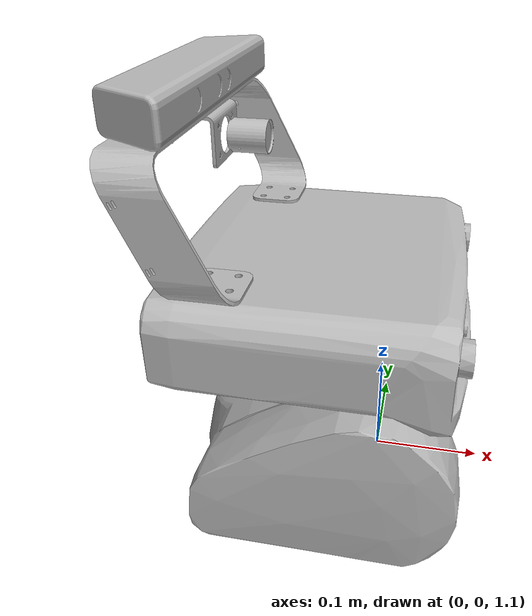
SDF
<?xml version="1.0" ?>
<sdf version="1.5">
  <model name="pr2">
    <static>0</static>
    <link name="head_pan_link">
      <self_collide>0</self_collide>
      <pose>-0.067070 0.000000 1.172130 0.000000 -0.000000 0.000000</pose>
      <inertial>
        <mass>6.339000</mass>
        <pose>0.010907 0.031693 0.090507 0.000000 -0.000000 0.000000</pose>
        <inertia>
          <ixx>0.032498</ixx>
          <ixy>0.000636</ixy>
          <ixz>0.002585</ixz>
          <iyy>0.046546</iyy>
          <iyz>-0.002453</iyz>
          <izz>0.057653</izz>
        </inertia>
      </inertial>
      <collision name="head_pan_link_geom">
        <geometry>
          <mesh>
            <uri>model://pr2/meshes/head_v0/head_pan_L.stl</uri>
          </mesh>
        </geometry>
      </collision>
      <visual name="head_pan_link_geom_visual">
        <geometry>
          <mesh>
            <uri>model://pr2/meshes/head_v0/head_pan.dae</uri>
          </mesh>
        </geometry>
      </visual>
      <velocity_decay />
    </link>
    <link name="head_tilt_link">
      <projector name="projector_wg6802418_projector_wg6802418">
        <texture>stereo_projection_pattern_high_res_red.png</texture>
        <fov>0.959931</fov>
        <near_clip>0.100000</near_clip>
        <far_clip>10.000000</far_clip>
        <pose>0.023200 0.110000 0.119100 0 -1.570793 0</pose>
      </projector>
      <self_collide>0</self_collide>
      <pose>0.000930 0.000000 1.172130 0.000000 -0.000000 0.000000</pose>
      <inertial>
        <mass>5.319000</mass>
        <pose>-0.005151 -0.014635 0.072819 0.000000 -0.000000 0.000000</pose>
        <inertia>
          <ixx>0.126134</ixx>
          <ixy>0.000237</ixy>
          <ixz>0.011881</ixz>
          <iyy>0.165102</iyy>
          <iyz>0.001606</iyz>
          <izz>0.166947</izz>
        </inertia>
      </inertial>
      <collision name="head_tilt_link_geom">
        <geometry>
          <mesh>
            <uri>model://pr2/meshes/head_v0/head_tilt_L.stl</uri>
          </mesh>
        </geometry>
      </collision>
      <visual name="head_tilt_link_geom_visual">
        <geometry>
          <mesh>
            <uri>model://pr2/meshes/head_v0/head_tilt.dae</uri>
          </mesh>
        </geometry>
      </visual>
      <collision name="head_tilt_link_geom_head_mount_kinect_ir_link">
        <pose>-0.147067 0.012500 0.291953 0.000000 -0.000000 0.000000</pose>
        <geometry>
          <sphere>
            <radius>0.000500</radius>
          </sphere>
        </geometry>
      </collision>
      <visual name="head_tilt_link_geom_head_mount_kinect_ir_link_visual">
        <pose>-0.147067 0.012500 0.291953 0.000000 -0.000000 0.000000</pose>
        <geometry>
          <sphere>
            <radius>0.000250</radius>
          </sphere>
        </geometry>
        <material>
          <script><name>Gazebo/Red</name></script>
        </material>
      </visual>
      <collision name="head_tilt_link_geom_head_mount_kinect_rgb_link">
        <pose>-0.147067 0.017500 0.291953 0.000000 -0.000000 0.000000</pose>
        <geometry>
          <sphere>
            <radius>0.000500</radius>
          </sphere>
        </geometry>
      </collision>
      <visual name="head_tilt_link_geom_head_mount_kinect_rgb_link_visual">
        <pose>-0.147067 0.017500 0.291953 0.000000 -0.000000 0.000000</pose>
        <geometry>
          <sphere>
            <radius>0.000250</radius>
          </sphere>
        </geometry>
        <material>
          <script><name>Gazebo/Red</name></script>
        </material>
      </visual>
      <collision name="head_tilt_link_geom_head_mount_link">
        <pose>-0.114800 0.000000 0.155500 0.000000 -0.000000 0.000000</pose>
        <geometry>
          <sphere>
            <radius>0.000500</radius>
          </sphere>
        </geometry>
      </collision>
      <visual name="head_tilt_link_geom_head_mount_link_visual">
        <pose>-0.114800 0.000000 0.155500 0.000000 -0.000000 0.000000</pose>
        <geometry>
          <mesh>
            <uri>model://pr2/meshes/sensors/kinect_prosilica_v0/115x100_swept_back--coarse.STL</uri>
            <scale>0.001000 0.001000 0.001000</scale>
          </mesh>
        </geometry>
      </visual>
      <collision name="head_tilt_link_geom_head_mount_prosilica_link">
        <pose>-0.161257 0.012500 0.244421 0.000000 -0.000000 0.000000</pose>
        <geometry>
          <sphere>
            <radius>0.000500</radius>
          </sphere>
        </geometry>
      </collision>
      <visual name="head_tilt_link_geom_head_mount_prosilica_link_visual">
        <pose>-0.161257 0.012500 0.244421 0.000000 -0.000000 0.000000</pose>
        <geometry>
          <sphere>
            <radius>0.000250</radius>
          </sphere>
        </geometry>
        <material>
          <script><name>Gazebo/Red</name></script>
        </material>
      </visual>
      <collision name="head_tilt_link_geom_head_plate_frame">
        <pose>0.023200 0.000000 0.064500 0.000000 -0.000000 0.000000</pose>
        <geometry>
          <box>
            <size>0.010000 0.010000 0.010000</size>
          </box>
        </geometry>
      </collision>
      <visual name="head_tilt_link_geom_head_plate_frame_visual">
        <pose>0.023200 0.000000 0.064500 0.000000 -0.000000 0.000000</pose>
        <geometry>
          <box>
            <size>0.010000 0.010000 0.010000</size>
          </box>
        </geometry>
        <material>
          <script><name>Gazebo/Grey</name></script>
        </material>
      </visual>
      <sensor name="head_mount_sensor" type="camera">
        <always_on>0</always_on>
        <visualize>0</visualize>
        <update_rate>1.000000</update_rate>
        <pose>-0.147067 0.012500 0.291953 0.000000 -0.000000 0.000000</pose>
        <camera>
          <horizontal_fov>0.994838</horizontal_fov>
          <image>
            <width>640</width>
            <height>480</height>
            <format>L8</format>
          </image>
          <clip>
            <near>0.010000</near>
            <far>5.000000</far>
          </clip>
        </camera>
      </sensor>
      <sensor name="head_mount_prosilica_link_sensor" type="camera">
        <update_rate>1.000000</update_rate>
        <pose>-0.161257 0.012500 0.244421 0.000000 -0.000000 0.000000</pose>
        <camera>
          <horizontal_fov>1.120501</horizontal_fov>
          <image>
            <width>320</width>
            <height>240</height>
            <format>R8G8B8</format>
          </image>
          <clip>
            <near>0.100000</near>
            <far>100.000000</far>
          </clip>
        </camera>
      </sensor>
      <sensor name="head_mount_prosilica_link_sim_pcd_sensor" type="camera">
        <update_rate>1.000000</update_rate>
        <pose>-0.161257 0.012500 0.244421 0.000000 -0.000000 0.000000</pose>
        <camera>
          <horizontal_fov>1.120501</horizontal_fov>
          <image>
            <width>320</width>
            <height>240</height>
            <format>R8G8B8</format>
          </image>
          <clip>
            <near>0.100000</near>
            <far>100.000000</far>
          </clip>
        </camera>
      </sensor>
      <sensor name="narrow_stereo_gazebo_l_stereo_camera_sensor" type="camera">
        <always_on>1</always_on>
        <visualize>1</visualize>
        <update_rate>25.000000</update_rate>
        <pose>0.068200 0.060000 0.114600 0.000000 -0.000000 0.000000</pose>
        <camera>
          <horizontal_fov>0.785398</horizontal_fov>
          <image>
            <width>640</width>
            <height>480</height>
            <format>L8</format>
          </image>
          <clip>
            <near>0.100000</near>
            <far>100.000000</far>
          </clip>
        </camera>
      </sensor>
      <sensor name="narrow_stereo_gazebo_r_stereo_camera_sensor" type="camera">
        <always_on>1</always_on>
        <update_rate>25.000000</update_rate>
        <pose>0.068200 -0.030000 0.114600 0.000000 -0.000000 0.000000</pose>
        <camera>
          <horizontal_fov>0.785398</horizontal_fov>
          <image>
            <width>640</width>
            <height>480</height>
            <format>L8</format>
          </image>
          <clip>
            <near>0.100000</near>
            <far>100.000000</far>
          </clip>
        </camera>
      </sensor>
      <sensor name="wide_stereo_gazebo_l_stereo_camera_sensor" type="camera">
        <update_rate>25.000000</update_rate>
        <pose>0.068200 0.030000 0.114600 0.000000 -0.000000 0.000000</pose>
        <camera>
          <horizontal_fov>1.570796</horizontal_fov>
          <image>
            <width>640</width>
            <height>480</height>
            <format>BAYER_BGGR8</format>
          </image>
          <clip>
            <near>0.100000</near>
            <far>100.000000</far>
          </clip>
        </camera>
      </sensor>
      <sensor name="wide_stereo_gazebo_r_stereo_camera_sensor" type="camera">
        <update_rate>25.000000</update_rate>
        <pose>0.068200 -0.060000 0.114600 0.000000 -0.000000 0.000000</pose>
        <camera>
          <horizontal_fov>1.570796</horizontal_fov>
          <image>
            <width>640</width>
            <height>480</height>
            <format>BAYER_BGGR8</format>
          </image>
          <clip>
            <near>0.100000</near>
            <far>100.000000</far>
          </clip>
        </camera>
      </sensor>
      <sensor name="high_def_sensor" type="camera">
        <update_rate>20.000000</update_rate>
        <pose>0.069657 -0.110000 0.119100 0.000000 -0.000000 0.000000</pose>
        <camera>
          <horizontal_fov>0.785398</horizontal_fov>
          <image>
            <width>2448</width>
            <height>2050</height>
            <format>R8G8B8</format>
          </image>
          <clip>
            <near>0.100000</near>
            <far>100.000000</far>
          </clip>
        </camera>
      </sensor>
      <velocity_decay />
    </link>
    <joint name="head_tilt_joint" type="revolute">
      <parent>head_pan_link</parent>
      <child>head_tilt_link</child>
      <axis>
        <xyz>0.000000 1.000000 0.000000</xyz>
        <dynamics>
          <damping>10.000000</damping>
          <friction>0.000000</friction>
        </dynamics>
        <limit>
          <lower>-0.471237</lower>
          <upper>1.396260</upper>
          <effort>0.000000</effort>
          <velocity>4.000000</velocity>
        </limit>
        <use_parent_model_frame>true</use_parent_model_frame>
      </axis>
    </joint>
  </model>
</sdf>
